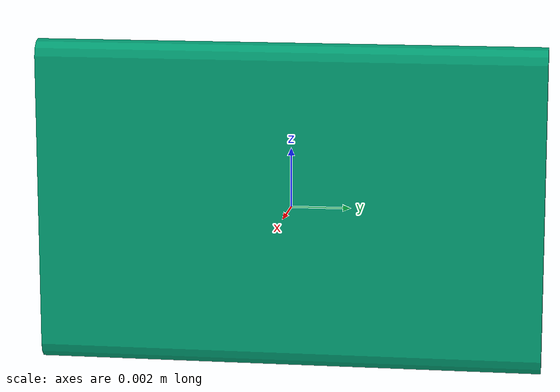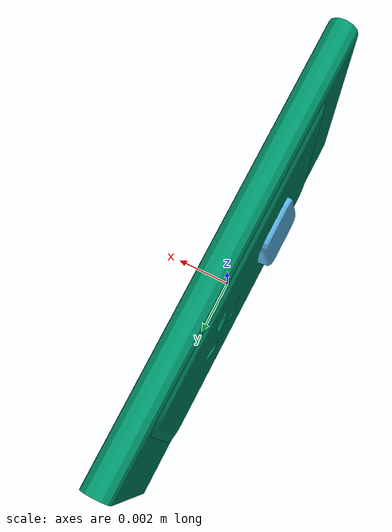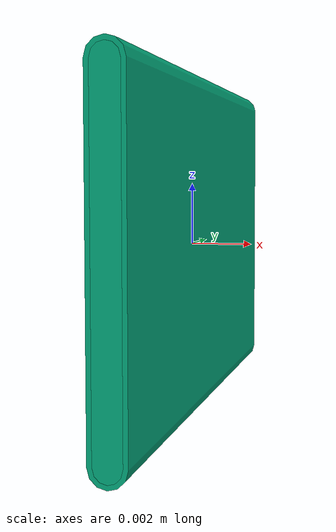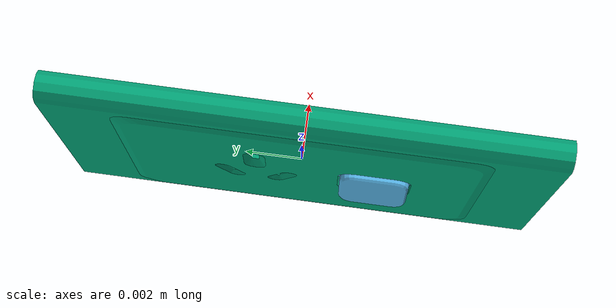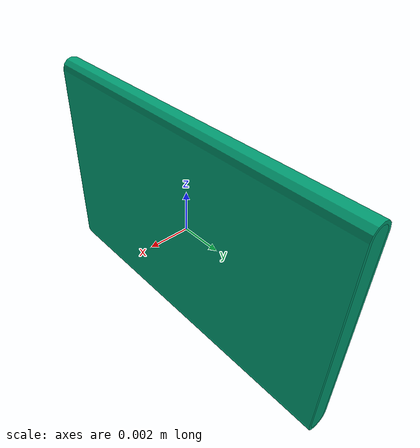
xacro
<robot name="partnet_6c774676-6d34-43da-8634-80b2e9cdd92d" xmlns:xacro="http://wiki.ros.org/xacro">
	<xacro:property name="scale" value="100" /><link name="base" />
	<link name="link_0">
		<visual name="switch-1">
			<origin xyz="${-0.3832017724323564 / scale} ${-0.007734443803132485 / scale} ${-0.061879632892466896 / scale}" />
			<geometry>
				<mesh filename="package://switch_description/urdf/100915/textured_objs/original-10.obj" scale="${1 / scale} ${1 / scale} ${1 / scale}" />
			</geometry>
		</visual>
		<collision>
			<origin xyz="${-0.3832017724323564 / scale} ${-0.007734443803132485 / scale} ${-0.061879632892466896 / scale}" />
			<geometry>
				<mesh filename="package://switch_description/urdf/100915/textured_objs/original-10.obj" scale="${1 / scale} ${1 / scale} ${1 / scale}" />
			</geometry>
		</collision>
	</link>
	<joint name="joint_0" type="revolute">
		<origin xyz="${0.3832017724323564 / scale} ${0.007734443803132485 / scale} ${0.061879632892466896 / scale}" />
		<axis xyz="1 0 0" />
		<child link="link_0" />
		<parent link="link_1" />
		<limit lower="0.0" upper="0.36442474781641604" effort="10.0" velocity="0.1" />
	</joint>
	<link name="link_1">
		<visual name="base_body-2">
			<origin xyz="${0 / scale} ${0 / scale} ${0 / scale}" />
			<geometry>
				<mesh filename="package://switch_description/urdf/100915/textured_objs/original-4.obj" scale="${1 / scale} ${1 / scale} ${1 / scale}" />
			</geometry>
		</visual>
		<visual name="base_body-2">
			<origin xyz="${0 / scale} ${0 / scale} ${0 / scale}" />
			<geometry>
				<mesh filename="package://switch_description/urdf/100915/textured_objs/original-3.obj" scale="${1 / scale} ${1 / scale} ${1 / scale}" />
			</geometry>
		</visual>
		<visual name="base_body-2">
			<origin xyz="${0 / scale} ${0 / scale} ${0 / scale}" />
			<geometry>
				<mesh filename="package://switch_description/urdf/100915/textured_objs/original-2.obj" scale="${1 / scale} ${1 / scale} ${1 / scale}" />
			</geometry>
		</visual>
		<visual name="base_body-2">
			<origin xyz="${0 / scale} ${0 / scale} ${0 / scale}" />
			<geometry>
				<mesh filename="package://switch_description/urdf/100915/textured_objs/original-8.obj" scale="${1 / scale} ${1 / scale} ${1 / scale}" />
			</geometry>
		</visual>
		<visual name="base_body-2">
			<origin xyz="${0 / scale} ${0 / scale} ${0 / scale}" />
			<geometry>
				<mesh filename="package://switch_description/urdf/100915/textured_objs/original-5.obj" scale="${1 / scale} ${1 / scale} ${1 / scale}" />
			</geometry>
		</visual>
		<visual name="base_body-2">
			<origin xyz="${0 / scale} ${0 / scale} ${0 / scale}" />
			<geometry>
				<mesh filename="package://switch_description/urdf/100915/textured_objs/original-6.obj" scale="${1 / scale} ${1 / scale} ${1 / scale}" />
			</geometry>
		</visual>
		<visual name="base_body-2">
			<origin xyz="${0 / scale} ${0 / scale} ${0 / scale}" />
			<geometry>
				<mesh filename="package://switch_description/urdf/100915/textured_objs/original-11.obj" scale="${1 / scale} ${1 / scale} ${1 / scale}" />
			</geometry>
		</visual>
		<visual name="base_body-2">
			<origin xyz="${0 / scale} ${0 / scale} ${0 / scale}" />
			<geometry>
				<mesh filename="package://switch_description/urdf/100915/textured_objs/original-7.obj" scale="${1 / scale} ${1 / scale} ${1 / scale}" />
			</geometry>
		</visual>
		<visual name="base_body-2">
			<origin xyz="${0 / scale} ${0 / scale} ${0 / scale}" />
			<geometry>
				<mesh filename="package://switch_description/urdf/100915/textured_objs/original-1.obj" scale="${1 / scale} ${1 / scale} ${1 / scale}" />
			</geometry>
		</visual>
		<collision>
			<origin xyz="${0 / scale} ${0 / scale} ${0 / scale}" />
			<geometry>
				<mesh filename="package://switch_description/urdf/100915/textured_objs/original-4.obj" scale="${1 / scale} ${1 / scale} ${1 / scale}" />
			</geometry>
		</collision>
		<collision>
			<origin xyz="${0 / scale} ${0 / scale} ${0 / scale}" />
			<geometry>
				<mesh filename="package://switch_description/urdf/100915/textured_objs/original-3.obj" scale="${1 / scale} ${1 / scale} ${1 / scale}" />
			</geometry>
		</collision>
		<collision>
			<origin xyz="${0 / scale} ${0 / scale} ${0 / scale}" />
			<geometry>
				<mesh filename="package://switch_description/urdf/100915/textured_objs/original-2.obj" scale="${1 / scale} ${1 / scale} ${1 / scale}" />
			</geometry>
		</collision>
		<collision>
			<origin xyz="${0 / scale} ${0 / scale} ${0 / scale}" />
			<geometry>
				<mesh filename="package://switch_description/urdf/100915/textured_objs/original-8.obj" scale="${1 / scale} ${1 / scale} ${1 / scale}" />
			</geometry>
		</collision>
		<collision>
			<origin xyz="${0 / scale} ${0 / scale} ${0 / scale}" />
			<geometry>
				<mesh filename="package://switch_description/urdf/100915/textured_objs/original-5.obj" scale="${1 / scale} ${1 / scale} ${1 / scale}" />
			</geometry>
		</collision>
		<collision>
			<origin xyz="${0 / scale} ${0 / scale} ${0 / scale}" />
			<geometry>
				<mesh filename="package://switch_description/urdf/100915/textured_objs/original-6.obj" scale="${1 / scale} ${1 / scale} ${1 / scale}" />
			</geometry>
		</collision>
		<collision>
			<origin xyz="${0 / scale} ${0 / scale} ${0 / scale}" />
			<geometry>
				<mesh filename="package://switch_description/urdf/100915/textured_objs/original-11.obj" scale="${1 / scale} ${1 / scale} ${1 / scale}" />
			</geometry>
		</collision>
		<collision>
			<origin xyz="${0 / scale} ${0 / scale} ${0 / scale}" />
			<geometry>
				<mesh filename="package://switch_description/urdf/100915/textured_objs/original-7.obj" scale="${1 / scale} ${1 / scale} ${1 / scale}" />
			</geometry>
		</collision>
		<collision>
			<origin xyz="${0 / scale} ${0 / scale} ${0 / scale}" />
			<geometry>
				<mesh filename="package://switch_description/urdf/100915/textured_objs/original-1.obj" scale="${1 / scale} ${1 / scale} ${1 / scale}" />
			</geometry>
		</collision>
	</link>
	<joint name="joint_1" type="fixed">
		<origin rpy="1.570796326794897 0 -1.570796326794897" xyz="${0 / scale} ${0 / scale} ${0 / scale}" />
		<child link="link_1" />
		<parent link="base" />
	</joint>
</robot>
